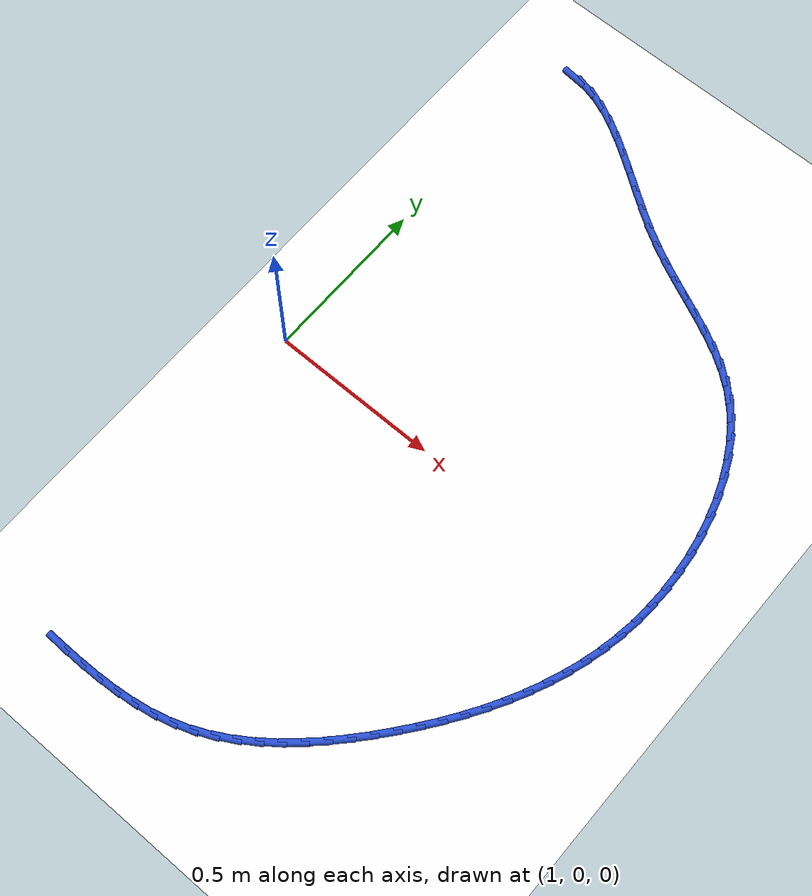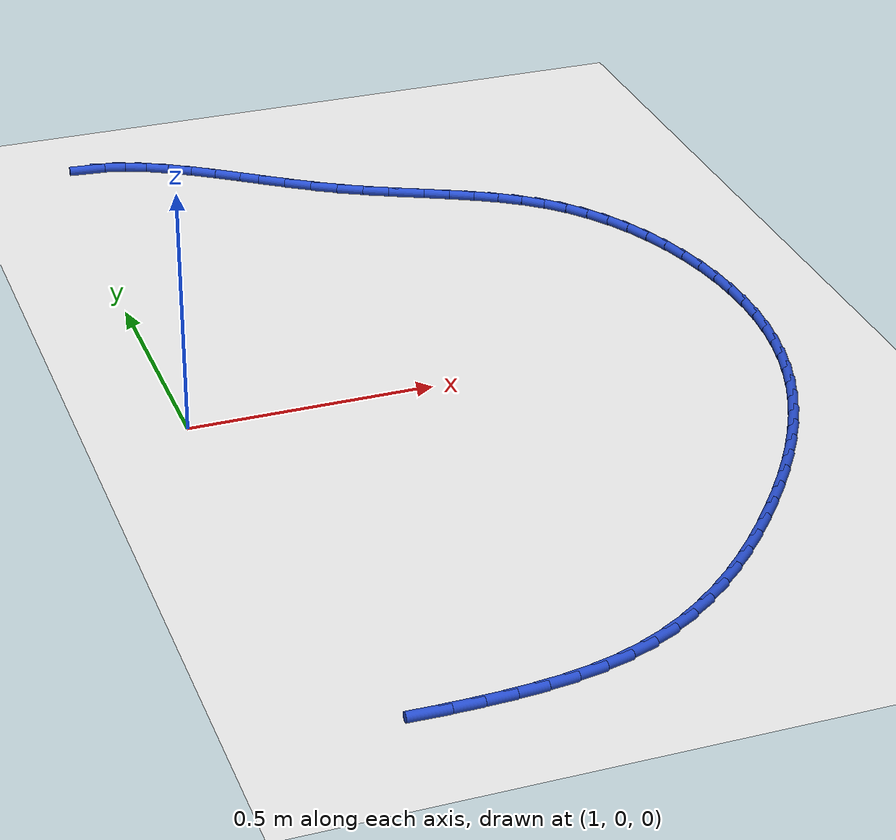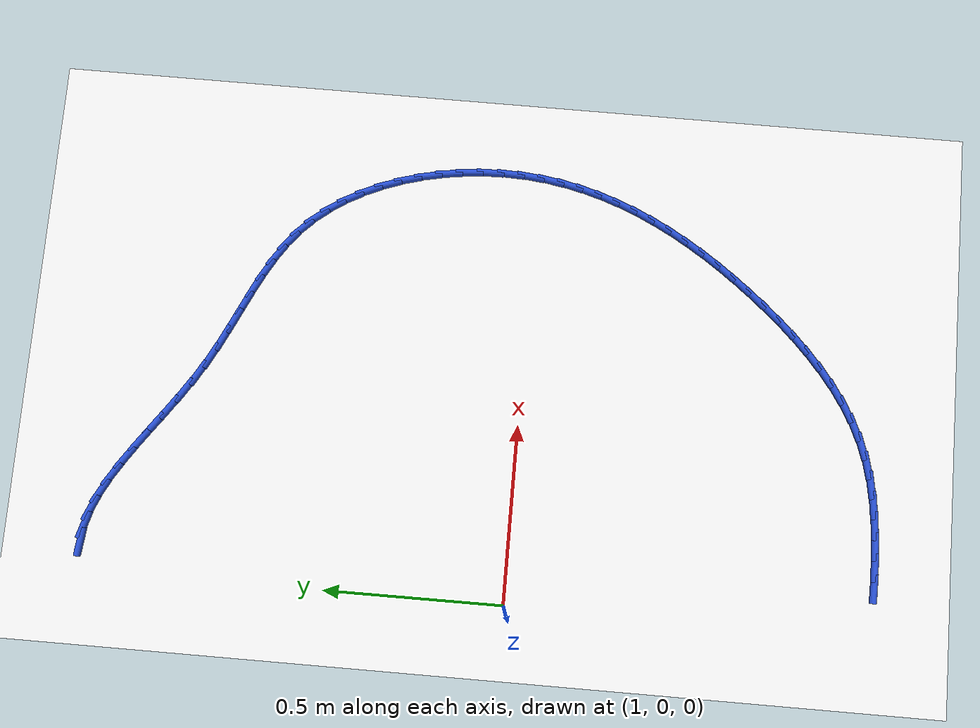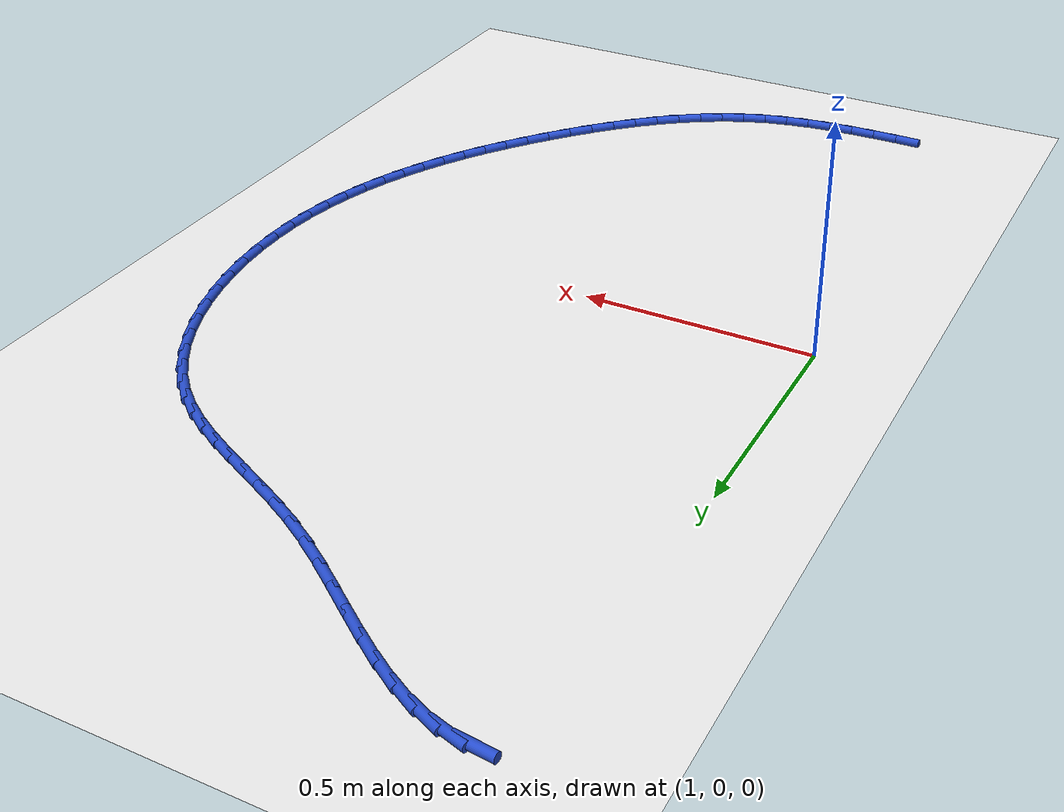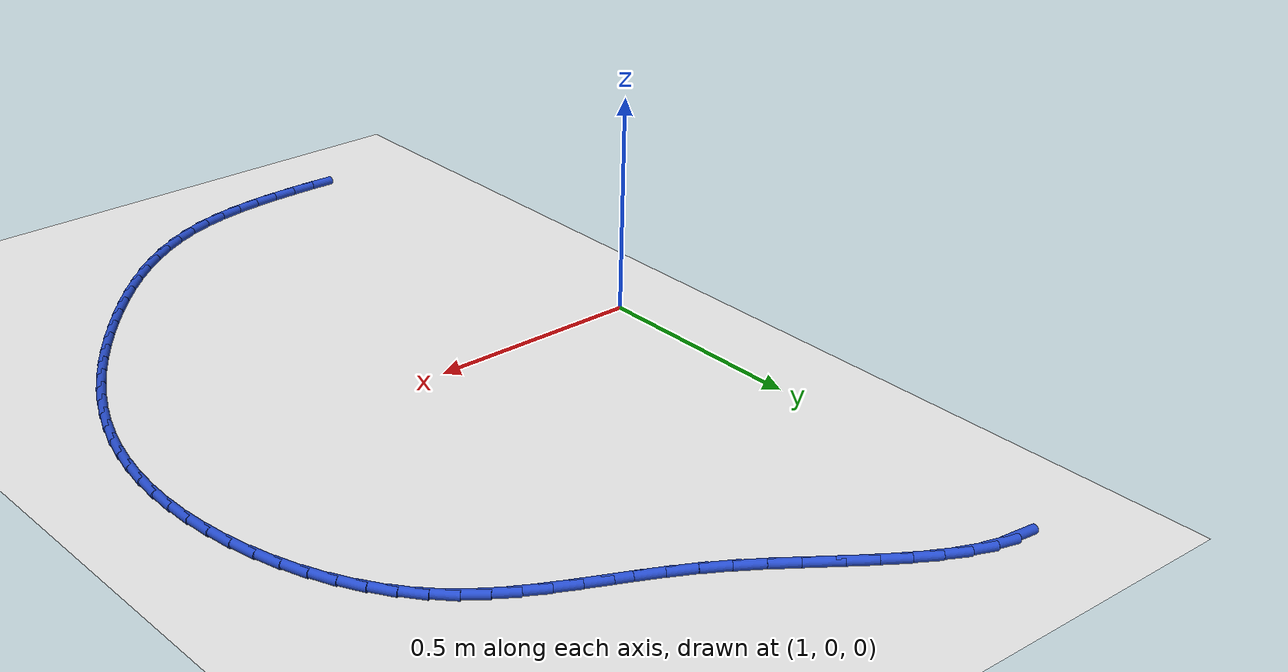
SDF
<sdf version="1.6">
 <world name="default">
  <model name="ground_plane">
   <static>1</static>
   <link name="link">
    <collision name="collision">
     <geometry><plane><normal>0 0 1</normal><size>100 100</size></plane></geometry>
     <surface><friction><ode><mu>100</mu><mu2>50</mu2></ode></friction></surface>
    </collision>
    <visual name="visual">
     <cast_shadows>0</cast_shadows>
     <geometry><plane><normal>0 0 1</normal><size>100 100</size></plane></geometry>
     <material>
      <script><uri>file://media/materials/scripts/gazebo.material</uri><name>Gazebo/WhiteGlow</name></script>
     </material>
    </visual>
   </link>
  </model>
  <model name="line">
   <link name="link_30">
    <pose>1.0761138280689855 1.180303029595587 0.01 0 1.57 -0.10283340116484498</pose>
    <collision name="collision">
     <geometry><cylinder><radius>0.01</radius><length>0.08</length></cylinder></geometry>
    </collision>
    <visual name="visual">
     <material>
      <script><name>Gazebo/Blue</name><uri>file://media/materials/scripts/gazebo.material</uri></script>
     </material>
     <geometry><cylinder><radius>0.01</radius><length>0.08</length></cylinder></geometry>
    </visual>
   </link>
   <link name="link_31">
    <pose>1.1234393863459298 1.17541915414108 0.01 0 1.57 -0.2716772466539732</pose>
    <collision name="collision">
     <geometry><cylinder><radius>0.01</radius><length>0.08</length></cylinder></geometry>
    </collision>
    <visual name="visual">
     <material>
      <script><name>Gazebo/Blue</name><uri>file://media/materials/scripts/gazebo.material</uri></script>
     </material>
     <geometry><cylinder><radius>0.01</radius><length>0.08</length></cylinder></geometry>
    </visual>
   </link>
   <link name="link_32">
    <pose>1.1712010941038342 1.162114428747828 0.01 0 1.57 -0.4005093324141519</pose>
    <collision name="collision">
     <geometry><cylinder><radius>0.01</radius><length>0.08</length></cylinder></geometry>
    </collision>
    <visual name="visual">
     <material>
      <script><name>Gazebo/Blue</name><uri>file://media/materials/scripts/gazebo.material</uri></script>
     </material>
     <geometry><cylinder><radius>0.01</radius><length>0.08</length></cylinder></geometry>
    </visual>
   </link>
   <link name="link_33">
    <pose>1.219420168189932 1.1416987753168988 0.01 0 1.57 -0.4938592876210296</pose>
    <collision name="collision">
     <geometry><cylinder><radius>0.01</radius><length>0.08</length></cylinder></geometry>
    </collision>
    <visual name="visual">
     <material>
      <script><name>Gazebo/Blue</name><uri>file://media/materials/scripts/gazebo.material</uri></script>
     </material>
     <geometry><cylinder><radius>0.01</radius><length>0.08</length></cylinder></geometry>
    </visual>
   </link>
   <link name="link_34">
    <pose>1.268117825451456 1.1154821157493593 0.01 0 1.57 -0.5580046799384387</pose>
    <collision name="collision">
     <geometry><cylinder><radius>0.01</radius><length>0.08</length></cylinder></geometry>
    </collision>
    <visual name="visual">
     <material>
      <script><name>Gazebo/Blue</name><uri>file://media/materials/scripts/gazebo.material</uri></script>
     </material>
     <geometry><cylinder><radius>0.01</radius><length>0.08</length></cylinder></geometry>
    </visual>
   </link>
   <link name="link_35">
    <pose>1.317315282735641 1.0847743719462781 0.01 0 1.57 -0.598280842321779</pose>
    <collision name="collision">
     <geometry><cylinder><radius>0.01</radius><length>0.08</length></cylinder></geometry>
    </collision>
    <visual name="visual">
     <material>
      <script><name>Gazebo/Blue</name><uri>file://media/materials/scripts/gazebo.material</uri></script>
     </material>
     <geometry><cylinder><radius>0.01</radius><length>0.08</length></cylinder></geometry>
    </visual>
   </link>
   <link name="link_36">
    <pose>1.3670337568897182 1.0508854658087223 0.01 0 1.57 -0.6183978752169873</pose>
    <collision name="collision">
     <geometry><cylinder><radius>0.01</radius><length>0.08</length></cylinder></geometry>
    </collision>
    <visual name="visual">
     <material>
      <script><name>Gazebo/Blue</name><uri>file://media/materials/scripts/gazebo.material</uri></script>
     </material>
     <geometry><cylinder><radius>0.01</radius><length>0.08</length></cylinder></geometry>
    </visual>
   </link>
   <link name="link_37">
    <pose>1.4172944647609225 1.0151253192377592 0.01 0 1.57 -0.6204904037723991</pose>
    <collision name="collision">
     <geometry><cylinder><radius>0.01</radius><length>0.08</length></cylinder></geometry>
    </collision>
    <visual name="visual">
     <material>
      <script><name>Gazebo/Blue</name><uri>file://media/materials/scripts/gazebo.material</uri></script>
     </material>
     <geometry><cylinder><radius>0.01</radius><length>0.08</length></cylinder></geometry>
    </visual>
   </link>
   <link name="link_38">
    <pose>1.468118623196487 0.9788038541344573 0.01 0 1.57 -0.6053097248054203</pose>
    <collision name="collision">
     <geometry><cylinder><radius>0.01</radius><length>0.08</length></cylinder></geometry>
    </collision>
    <visual name="visual">
     <material>
      <script><name>Gazebo/Blue</name><uri>file://media/materials/scripts/gazebo.material</uri></script>
     </material>
     <geometry><cylinder><radius>0.01</radius><length>0.08</length></cylinder></geometry>
    </visual>
   </link>
   <link name="link_39">
    <pose>1.5195274490436448 0.9432309923998837 0.01 0 1.57 -0.5723748491221786</pose>
    <collision name="collision">
     <geometry><cylinder><radius>0.01</radius><length>0.08</length></cylinder></geometry>
    </collision>
    <visual name="visual">
     <material>
      <script><name>Gazebo/Blue</name><uri>file://media/materials/scripts/gazebo.material</uri></script>
     </material>
     <geometry><cylinder><radius>0.01</radius><length>0.08</length></cylinder></geometry>
    </visual>
   </link>
   <link name="link_40">
    <pose>1.5715421591496288 0.9097166559351063 0.01 0 1.57 -0.5222815579240985</pose>
    <collision name="collision">
     <geometry><cylinder><radius>0.01</radius><length>0.08</length></cylinder></geometry>
    </collision>
    <visual name="visual">
     <material>
      <script><name>Gazebo/Blue</name><uri>file://media/materials/scripts/gazebo.material</uri></script>
     </material>
     <geometry><cylinder><radius>0.01</radius><length>0.08</length></cylinder></geometry>
    </visual>
   </link>
   <link name="link_41">
    <pose>1.6241534384037557 0.8794338502076031 0.01 0 1.57 -0.47579233122674075</pose>
    <collision name="collision">
     <geometry><cylinder><radius>0.01</radius><length>0.08</length></cylinder></geometry>
    </collision>
    <visual name="visual">
     <material>
      <script><name>Gazebo/Blue</name><uri>file://media/materials/scripts/gazebo.material</uri></script>
     </material>
     <geometry><cylinder><radius>0.01</radius><length>0.08</length></cylinder></geometry>
    </visual>
   </link>
   <link name="link_42">
    <pose>1.6770452349359104 0.8521800611958917 0.01 0 1.57 -0.44652997124669397</pose>
    <collision name="collision">
     <geometry><cylinder><radius>0.01</radius><length>0.08</length></cylinder></geometry>
    </collision>
    <visual name="visual">
     <material>
      <script><name>Gazebo/Blue</name><uri>file://media/materials/scripts/gazebo.material</uri></script>
     </material>
     <geometry><cylinder><radius>0.01</radius><length>0.08</length></cylinder></geometry>
    </visual>
   </link>
   <link name="link_43">
    <pose>1.7297243178218464 0.8269582393867196 0.01 0 1.57 -0.43573258028484774</pose>
    <collision name="collision">
     <geometry><cylinder><radius>0.01</radius><length>0.08</length></cylinder></geometry>
    </collision>
    <visual name="visual">
     <material>
      <script><name>Gazebo/Blue</name><uri>file://media/materials/scripts/gazebo.material</uri></script>
     </material>
     <geometry><cylinder><radius>0.01</radius><length>0.08</length></cylinder></geometry>
    </visual>
   </link>
   <link name="link_44">
    <pose>1.7816953083916272 0.8027617039919421 0.01 0 1.57 -0.4444661014317783</pose>
    <collision name="collision">
     <geometry><cylinder><radius>0.01</radius><length>0.08</length></cylinder></geometry>
    </collision>
    <visual name="visual">
     <material>
      <script><name>Gazebo/Blue</name><uri>file://media/materials/scripts/gazebo.material</uri></script>
     </material>
     <geometry><cylinder><radius>0.01</radius><length>0.08</length></cylinder></geometry>
    </visual>
   </link>
   <link name="link_45">
    <pose>1.8324628279753206 0.7785837742234146 0.01 0 1.57 -0.473893038524975</pose>
    <collision name="collision">
     <geometry><cylinder><radius>0.01</radius><length>0.08</length></cylinder></geometry>
    </collision>
    <visual name="visual">
     <material>
      <script><name>Gazebo/Blue</name><uri>file://media/materials/scripts/gazebo.material</uri></script>
     </material>
     <geometry><cylinder><radius>0.01</radius><length>0.08</length></cylinder></geometry>
    </visual>
   </link>
   <link name="link_46">
    <pose>1.8815314979029893 0.7534177692929922 0.01 0 1.57 -0.5251620112704335</pose>
    <collision name="collision">
     <geometry><cylinder><radius>0.01</radius><length>0.08</length></cylinder></geometry>
    </collision>
    <visual name="visual">
     <material>
      <script><name>Gazebo/Blue</name><uri>file://media/materials/scripts/gazebo.material</uri></script>
     </material>
     <geometry><cylinder><radius>0.01</radius><length>0.08</length></cylinder></geometry>
    </visual>
   </link>
   <link name="link_47">
    <pose>1.9284059395047002 0.7262570084125299 0.01 0 1.57 -0.5989775658666884</pose>
    <collision name="collision">
     <geometry><cylinder><radius>0.01</radius><length>0.08</length></cylinder></geometry>
    </collision>
    <visual name="visual">
     <material>
      <script><name>Gazebo/Blue</name><uri>file://media/materials/scripts/gazebo.material</uri></script>
     </material>
     <geometry><cylinder><radius>0.01</radius><length>0.08</length></cylinder></geometry>
    </visual>
   </link>
   <link name="link_48">
    <pose>1.9725907741105184 0.6960948107938832 0.01 0 1.57 -0.694789931543957</pose>
    <collision name="collision">
     <geometry><cylinder><radius>0.01</radius><length>0.08</length></cylinder></geometry>
    </collision>
    <visual name="visual">
     <material>
      <script><name>Gazebo/Blue</name><uri>file://media/materials/scripts/gazebo.material</uri></script>
     </material>
     <geometry><cylinder><radius>0.01</radius><length>0.08</length></cylinder></geometry>
    </visual>
   </link>
   <link name="link_49">
    <pose>2.0135906703818724 0.6619246418105853 0.01 0 1.57 -0.8042591536278633</pose>
    <collision name="collision">
     <geometry><cylinder><radius>0.01</radius><length>0.08</length></cylinder></geometry>
    </collision>
    <visual name="visual">
     <material>
      <script><name>Gazebo/Blue</name><uri>file://media/materials/scripts/gazebo.material</uri></script>
     </material>
     <geometry><cylinder><radius>0.01</radius><length>0.08</length></cylinder></geometry>
    </visual>
   </link>
   <link name="link_50">
    <pose>2.0510145116988263 0.6230617872267579 0.01 0 1.57 -0.9075346252584526</pose>
    <collision name="collision">
     <geometry><cylinder><radius>0.01</radius><length>0.08</length></cylinder></geometry>
    </collision>
    <visual name="visual">
     <material>
      <script><name>Gazebo/Blue</name><uri>file://media/materials/scripts/gazebo.material</uri></script>
     </material>
     <geometry><cylinder><radius>0.01</radius><length>0.08</length></cylinder></geometry>
    </visual>
   </link>
   <link name="link_51">
    <pose>2.0847964865762427 0.5798260917298063 0.01 0 1.57 -1.0015143556367594</pose>
    <collision name="collision">
     <geometry><cylinder><radius>0.01</radius><length>0.08</length></cylinder></geometry>
    </collision>
    <visual name="visual">
     <material>
      <script><name>Gazebo/Blue</name><uri>file://media/materials/scripts/gazebo.material</uri></script>
     </material>
     <geometry><cylinder><radius>0.01</radius><length>0.08</length></cylinder></geometry>
    </visual>
   </link>
   <link name="link_52">
    <pose>2.1149340802357357 0.5327328634805942 0.01 0 1.57 -1.0871615051269494</pose>
    <collision name="collision">
     <geometry><cylinder><radius>0.01</radius><length>0.08</length></cylinder></geometry>
    </collision>
    <visual name="visual">
     <material>
      <script><name>Gazebo/Blue</name><uri>file://media/materials/scripts/gazebo.material</uri></script>
     </material>
     <geometry><cylinder><radius>0.01</radius><length>0.08</length></cylinder></geometry>
    </visual>
   </link>
   <link name="link_53">
    <pose>2.1414247778989197 0.48229741063998754 0.01 0 1.57 -1.1656736625387067</pose>
    <collision name="collision">
     <geometry><cylinder><radius>0.01</radius><length>0.08</length></cylinder></geometry>
    </collision>
    <visual name="visual">
     <material>
      <script><name>Gazebo/Blue</name><uri>file://media/materials/scripts/gazebo.material</uri></script>
     </material>
     <geometry><cylinder><radius>0.01</radius><length>0.08</length></cylinder></geometry>
    </visual>
   </link>
   <link name="link_54">
    <pose>2.164266064787409 0.42903504136884935 0.01 0 1.57 -1.2383200657748175</pose>
    <collision name="collision">
     <geometry><cylinder><radius>0.01</radius><length>0.08</length></cylinder></geometry>
    </collision>
    <visual name="visual">
     <material>
      <script><name>Gazebo/Blue</name><uri>file://media/materials/scripts/gazebo.material</uri></script>
     </material>
     <geometry><cylinder><radius>0.01</radius><length>0.08</length></cylinder></geometry>
    </visual>
   </link>
   <link name="link_55">
    <pose>2.183455426122816 0.3734610638280452 0.01 0 1.57 -1.3063544306910106</pose>
    <collision name="collision">
     <geometry><cylinder><radius>0.01</radius><length>0.08</length></cylinder></geometry>
    </collision>
    <visual name="visual">
     <material>
      <script><name>Gazebo/Blue</name><uri>file://media/materials/scripts/gazebo.material</uri></script>
     </material>
     <geometry><cylinder><radius>0.01</radius><length>0.08</length></cylinder></geometry>
    </visual>
   </link>
   <link name="link_56">
    <pose>2.1989903471267573 0.31609078617843894 0.01 0 1.57 -1.370980329789941</pose>
    <collision name="collision">
     <geometry><cylinder><radius>0.01</radius><length>0.08</length></cylinder></geometry>
    </collision>
    <visual name="visual">
     <material>
      <script><name>Gazebo/Blue</name><uri>file://media/materials/scripts/gazebo.material</uri></script>
     </material>
     <geometry><cylinder><radius>0.01</radius><length>0.08</length></cylinder></geometry>
    </visual>
   </link>
   <link name="link_57">
    <pose>2.2108683130208453 0.25743951658089576 0.01 0 1.57 -1.433349410067765</pose>
    <collision name="collision">
     <geometry><cylinder><radius>0.01</radius><length>0.08</length></cylinder></geometry>
    </collision>
    <visual name="visual">
     <material>
      <script><name>Gazebo/Blue</name><uri>file://media/materials/scripts/gazebo.material</uri></script>
     </material>
     <geometry><cylinder><radius>0.01</radius><length>0.08</length></cylinder></geometry>
    </visual>
   </link>
   <link name="link_58">
    <pose>2.219086809026695 0.19802256319627942 0.01 0 1.57 -1.4945789906751863</pose>
    <collision name="collision">
     <geometry><cylinder><radius>0.01</radius><length>0.08</length></cylinder></geometry>
    </collision>
    <visual name="visual">
     <material>
      <script><name>Gazebo/Blue</name><uri>file://media/materials/scripts/gazebo.material</uri></script>
     </material>
     <geometry><cylinder><radius>0.01</radius><length>0.08</length></cylinder></geometry>
    </visual>
   </link>
   <link name="link_59">
    <pose>2.2236433203659196 0.13835523418545526 0.01 0 1.57 -1.555781025920331</pose>
    <collision name="collision">
     <geometry><cylinder><radius>0.01</radius><length>0.08</length></cylinder></geometry>
    </collision>
    <visual name="visual">
     <material>
      <script><name>Gazebo/Blue</name><uri>file://media/materials/scripts/gazebo.material</uri></script>
     </material>
     <geometry><cylinder><radius>0.01</radius><length>0.08</length></cylinder></geometry>
    </visual>
   </link>
   <link name="link_60">
    <pose>2.2245353322601344 0.07895283770928696 0.01 0 1.57 1.5234996087201487</pose>
    <collision name="collision">
     <geometry><cylinder><radius>0.01</radius><length>0.08</length></cylinder></geometry>
    </collision>
    <visual name="visual">
     <material>
      <script><name>Gazebo/Blue</name><uri>file://media/materials/scripts/gazebo.material</uri></script>
     </material>
     <geometry><cylinder><radius>0.01</radius><length>0.08</length></cylinder></geometry>
    </visual>
   </link>
   <link name="link_61">
    <pose>2.2217605897788677 0.020329887292110136 0.01 0 1.57 1.4600415859559286</pose>
    <collision name="collision">
     <geometry><cylinder><radius>0.01</radius><length>0.08</length></cylinder></geometry>
    </collision>
    <visual name="visual">
     <material>
      <script><name>Gazebo/Blue</name><uri>file://media/materials/scripts/gazebo.material</uri></script>
     </material>
     <geometry><cylinder><radius>0.01</radius><length>0.08</length></cylinder></geometry>
    </visual>
   </link>
   <link name="link_62">
    <pose>2.2153677332189567 -0.03715474537857221 0.01 0 1.57 1.3976667061551105</pose>
    <collision name="collision">
     <geometry><cylinder><radius>0.01</radius><length>0.08</length></cylinder></geometry>
    </collision>
    <visual name="visual">
     <material>
      <script><name>Gazebo/Blue</name><uri>file://media/materials/scripts/gazebo.material</uri></script>
     </material>
     <geometry><cylinder><radius>0.01</radius><length>0.08</length></cylinder></geometry>
    </visual>
   </link>
   <link name="link_63">
    <pose>2.2055169638976713 -0.09348335149157994 0.01 0 1.57 1.3372107320500632</pose>
    <collision name="collision">
     <geometry><cylinder><radius>0.01</radius><length>0.08</length></cylinder></geometry>
    </collision>
    <visual name="visual">
     <material>
      <script><name>Gazebo/Blue</name><uri>file://media/materials/scripts/gazebo.material</uri></script>
     </material>
     <geometry><cylinder><radius>0.01</radius><length>0.08</length></cylinder></geometry>
    </visual>
   </link>
   <link name="link_64">
    <pose>2.192383273951104 -0.14868345378948641 0.01 0 1.57 1.2791380443699727</pose>
    <collision name="collision">
     <geometry><cylinder><radius>0.01</radius><length>0.08</length></cylinder></geometry>
    </collision>
    <visual name="visual">
     <material>
      <script><name>Gazebo/Blue</name><uri>file://media/materials/scripts/gazebo.material</uri></script>
     </material>
     <geometry><cylinder><radius>0.01</radius><length>0.08</length></cylinder></geometry>
    </visual>
   </link>
   <link name="link_65">
    <pose>2.176141655515349 -0.20278257501486735 0.01 0 1.57 1.2238171149671286</pose>
    <collision name="collision">
     <geometry><cylinder><radius>0.01</radius><length>0.08</length></cylinder></geometry>
    </collision>
    <visual name="visual">
     <material>
      <script><name>Gazebo/Blue</name><uri>file://media/materials/scripts/gazebo.material</uri></script>
     </material>
     <geometry><cylinder><radius>0.01</radius><length>0.08</length></cylinder></geometry>
    </visual>
   </link>
   <link name="link_66">
    <pose>2.156967100726498 -0.25580823791029805 0.01 0 1.57 1.1715175561949671</pose>
    <collision name="collision">
     <geometry><cylinder><radius>0.01</radius><length>0.08</length></cylinder></geometry>
    </collision>
    <visual name="visual">
     <material>
      <script><name>Gazebo/Blue</name><uri>file://media/materials/scripts/gazebo.material</uri></script>
     </material>
     <geometry><cylinder><radius>0.01</radius><length>0.08</length></cylinder></geometry>
    </visual>
   </link>
   <link name="link_67">
    <pose>2.1350346017206463 -0.3077879652183523 0.01 0 1.57 1.1224151811629193</pose>
    <collision name="collision">
     <geometry><cylinder><radius>0.01</radius><length>0.08</length></cylinder></geometry>
    </collision>
    <visual name="visual">
     <material>
      <script><name>Gazebo/Blue</name><uri>file://media/materials/scripts/gazebo.material</uri></script>
     </material>
     <geometry><cylinder><radius>0.01</radius><length>0.08</length></cylinder></geometry>
    </visual>
   </link>
   <link name="link_68">
    <pose>2.1105191506338845 -0.3587492796816052 0.01 0 1.57 1.0766027468313932</pose>
    <collision name="collision">
     <geometry><cylinder><radius>0.01</radius><length>0.08</length></cylinder></geometry>
    </collision>
    <visual name="visual">
     <material>
      <script><name>Gazebo/Blue</name><uri>file://media/materials/scripts/gazebo.material</uri></script>
     </material>
     <geometry><cylinder><radius>0.01</radius><length>0.08</length></cylinder></geometry>
    </visual>
   </link>
   <link name="link_69">
    <pose>2.0835957396023077 -0.408719704042632 0.01 0 1.57 1.0341039079826806</pose>
    <collision name="collision">
     <geometry><cylinder><radius>0.01</radius><length>0.08</length></cylinder></geometry>
    </collision>
    <visual name="visual">
     <material>
      <script><name>Gazebo/Blue</name><uri>file://media/materials/scripts/gazebo.material</uri></script>
     </material>
     <geometry><cylinder><radius>0.01</radius><length>0.08</length></cylinder></geometry>
    </visual>
   </link>
   <link name="link_70">
    <pose>2.0544393607620077 -0.45772676104400795 0.01 0 1.57 0.9948882402144543</pose>
    <collision name="collision">
     <geometry><cylinder><radius>0.01</radius><length>0.08</length></cylinder></geometry>
    </collision>
    <visual name="visual">
     <material>
      <script><name>Gazebo/Blue</name><uri>file://media/materials/scripts/gazebo.material</uri></script>
     </material>
     <geometry><cylinder><radius>0.01</radius><length>0.08</length></cylinder></geometry>
    </visual>
   </link>
   <link name="link_71">
    <pose>2.023225006249079 -0.5057979734283069 0.01 0 1.57 0.9588857550280101</pose>
    <collision name="collision">
     <geometry><cylinder><radius>0.01</radius><length>0.08</length></cylinder></geometry>
    </collision>
    <visual name="visual">
     <material>
      <script><name>Gazebo/Blue</name><uri>file://media/materials/scripts/gazebo.material</uri></script>
     </material>
     <geometry><cylinder><radius>0.01</radius><length>0.08</length></cylinder></geometry>
    </visual>
   </link>
   <link name="link_72">
    <pose>1.9901276681996145 -0.552960863938104 0.01 0 1.57 0.9259999295552127</pose>
    <collision name="collision">
     <geometry><cylinder><radius>0.01</radius><length>0.08</length></cylinder></geometry>
    </collision>
    <visual name="visual">
     <material>
      <script><name>Gazebo/Blue</name><uri>file://media/materials/scripts/gazebo.material</uri></script>
     </material>
     <geometry><cylinder><radius>0.01</radius><length>0.08</length></cylinder></geometry>
    </visual>
   </link>
   <link name="link_73">
    <pose>1.9553223387497063 -0.599242955315974 0.01 0 1.57 0.8961158476229802</pose>
    <collision name="collision">
     <geometry><cylinder><radius>0.01</radius><length>0.08</length></cylinder></geometry>
    </collision>
    <visual name="visual">
     <material>
      <script><name>Gazebo/Blue</name><uri>file://media/materials/scripts/gazebo.material</uri></script>
     </material>
     <geometry><cylinder><radius>0.01</radius><length>0.08</length></cylinder></geometry>
    </visual>
   </link>
   <link name="link_74">
    <pose>1.9189839271646503 -0.6446716003716967 0.01 0 1.57 0.8672167908676095</pose>
    <collision name="collision">
     <geometry><cylinder><radius>0.01</radius><length>0.08</length></cylinder></geometry>
    </collision>
    <visual name="visual">
     <material>
      <script><name>Gazebo/Blue</name><uri>file://media/materials/scripts/gazebo.material</uri></script>
     </material>
     <geometry><cylinder><radius>0.01</radius><length>0.08</length></cylinder></geometry>
    </visual>
   </link>
   <link name="link_75">
    <pose>1.881234280555975 -0.6891653439824809 0.01 0 1.57 0.8339093794432578</pose>
    <collision name="collision">
     <geometry><cylinder><radius>0.01</radius><length>0.08</length></cylinder></geometry>
    </collision>
    <visual name="visual">
     <material>
      <script><name>Gazebo/Blue</name><uri>file://media/materials/scripts/gazebo.material</uri></script>
     </material>
     <geometry><cylinder><radius>0.01</radius><length>0.08</length></cylinder></geometry>
    </visual>
   </link>
   <link name="link_76">
    <pose>1.8420511462368307 -0.7323472435635456 0.01 0 1.57 0.7949017394627724</pose>
    <collision name="collision">
     <geometry><cylinder><radius>0.01</radius><length>0.08</length></cylinder></geometry>
    </collision>
    <visual name="visual">
     <material>
      <script><name>Gazebo/Blue</name><uri>file://media/materials/scripts/gazebo.material</uri></script>
     </material>
     <geometry><cylinder><radius>0.01</radius><length>0.08</length></cylinder></geometry>
    </visual>
   </link>
   <link name="link_77">
    <pose>1.801388043609621 -0.7737906753790126 0.01 0 1.57 0.7496789009649478</pose>
    <collision name="collision">
     <geometry><cylinder><radius>0.01</radius><length>0.08</length></cylinder></geometry>
    </collision>
    <visual name="visual">
     <material>
      <script><name>Gazebo/Blue</name><uri>file://media/materials/scripts/gazebo.material</uri></script>
     </material>
     <geometry><cylinder><radius>0.01</radius><length>0.08</length></cylinder></geometry>
    </visual>
   </link>
   <link name="link_78">
    <pose>1.7591984920767503 -0.8130690156930045 0.01 0 1.57 0.6976694825897676</pose>
    <collision name="collision">
     <geometry><cylinder><radius>0.01</radius><length>0.08</length></cylinder></geometry>
    </collision>
    <visual name="visual">
     <material>
      <script><name>Gazebo/Blue</name><uri>file://media/materials/scripts/gazebo.material</uri></script>
     </material>
     <geometry><cylinder><radius>0.01</radius><length>0.08</length></cylinder></geometry>
    </visual>
   </link>
   <link name="link_79">
    <pose>1.7154360110406228 -0.8497556407696417 0.01 0 1.57 0.6382892621334868</pose>
    <collision name="collision">
     <geometry><cylinder><radius>0.01</radius><length>0.08</length></cylinder></geometry>
    </collision>
    <visual name="visual">
     <material>
      <script><name>Gazebo/Blue</name><uri>file://media/materials/scripts/gazebo.material</uri></script>
     </material>
     <geometry><cylinder><radius>0.01</radius><length>0.08</length></cylinder></geometry>
    </visual>
   </link>
   <link name="link_80">
    <pose>1.6700541199036427 -0.8834239268730468 0.01 0 1.57 0.571011364132242</pose>
    <collision name="collision">
     <geometry><cylinder><radius>0.01</radius><length>0.08</length></cylinder></geometry>
    </collision>
    <visual name="visual">
     <material>
      <script><name>Gazebo/Blue</name><uri>file://media/materials/scripts/gazebo.material</uri></script>
     </material>
     <geometry><cylinder><radius>0.01</radius><length>0.08</length></cylinder></geometry>
    </visual>
   </link>
   <link name="link_81">
    <pose>1.6230063380682134 -0.9136472502673423 0.01 0 1.57 0.4954706857063809</pose>
    <collision name="collision">
     <geometry><cylinder><radius>0.01</radius><length>0.08</length></cylinder></geometry>
    </collision>
    <visual name="visual">
     <material>
      <script><name>Gazebo/Blue</name><uri>file://media/materials/scripts/gazebo.material</uri></script>
     </material>
     <geometry><cylinder><radius>0.01</radius><length>0.08</length></cylinder></geometry>
    </visual>
   </link>
   <link name="link_82">
    <pose>1.5742461849367393 -0.9399989872166489 0.01 0 1.57 0.4116037273139908</pose>
    <collision name="collision">
     <geometry><cylinder><radius>0.01</radius><length>0.08</length></cylinder></geometry>
    </collision>
    <visual name="visual">
     <material>
      <script><name>Gazebo/Blue</name><uri>file://media/materials/scripts/gazebo.material</uri></script>
     </material>
     <geometry><cylinder><radius>0.01</radius><length>0.08</length></cylinder></geometry>
    </visual>
   </link>
   <link name="link_83">
    <pose>1.5237271799116245 -0.9620525139850891 0.01 0 1.57 0.3207290861637782</pose>
    <collision name="collision">
     <geometry><cylinder><radius>0.01</radius><length>0.08</length></cylinder></geometry>
    </collision>
    <visual name="visual">
     <material>
      <script><name>Gazebo/Blue</name><uri>file://media/materials/scripts/gazebo.material</uri></script>
     </material>
     <geometry><cylinder><radius>0.01</radius><length>0.08</length></cylinder></geometry>
    </visual>
   </link>
   <link name="link_84">
    <pose>1.4714186274491368 -0.9794293499653157 0.01 0 1.57 0.23495023563878764</pose>
    <collision name="collision">
     <geometry><cylinder><radius>0.01</radius><length>0.08</length></cylinder></geometry>
    </collision>
    <visual name="visual">
     <material>
      <script><name>Gazebo/Blue</name><uri>file://media/materials/scripts/gazebo.material</uri></script>
     </material>
     <geometry><cylinder><radius>0.01</radius><length>0.08</length></cylinder></geometry>
    </visual>
   </link>
   <link name="link_85">
    <pose>1.417482944837049 -0.9923399929562933 0.01 0 1.57 0.16228647458102463</pose>
    <collision name="collision">
     <geometry><cylinder><radius>0.01</radius><length>0.08</length></cylinder></geometry>
    </collision>
    <visual name="visual">
     <material>
      <script><name>Gazebo/Blue</name><uri>file://media/materials/scripts/gazebo.material</uri></script>
     </material>
     <geometry><cylinder><radius>0.01</radius><length>0.08</length></cylinder></geometry>
    </visual>
   </link>
   <link name="link_86">
    <pose>1.3622118595100032 -1.0013893261721156 0.01 0 1.57 0.10263775277491634</pose>
    <collision name="collision">
     <geometry><cylinder><radius>0.01</radius><length>0.08</length></cylinder></geometry>
    </collision>
    <visual name="visual">
     <material>
      <script><name>Gazebo/Blue</name><uri>file://media/materials/scripts/gazebo.material</uri></script>
     </material>
     <geometry><cylinder><radius>0.01</radius><length>0.08</length></cylinder></geometry>
    </visual>
   </link>
   <link name="link_87">
    <pose>1.305899476468849 -1.0071894842101592 0.01 0 1.57 0.05537866709364074</pose>
    <collision name="collision">
     <geometry><cylinder><radius>0.01</radius><length>0.08</length></cylinder></geometry>
    </collision>
    <visual name="visual">
     <material>
      <script><name>Gazebo/Blue</name><uri>file://media/materials/scripts/gazebo.material</uri></script>
     </material>
     <geometry><cylinder><radius>0.01</radius><length>0.08</length></cylinder></geometry>
    </visual>
   </link>
   <link name="link_88">
    <pose>1.2488399007144377 -1.010352601667802 0.01 0 1.57 0.0197880404122283</pose>
    <collision name="collision">
     <geometry><cylinder><radius>0.01</radius><length>0.08</length></cylinder></geometry>
    </collision>
    <visual name="visual">
     <material>
      <script><name>Gazebo/Blue</name><uri>file://media/materials/scripts/gazebo.material</uri></script>
     </material>
     <geometry><cylinder><radius>0.01</radius><length>0.08</length></cylinder></geometry>
    </visual>
   </link>
   <link name="link_89">
    <pose>1.1913272372476198 -1.0114908131424207 0.01 0 1.57 -0.005700582525180118</pose>
    <collision name="collision">
     <geometry><cylinder><radius>0.01</radius><length>0.08</length></cylinder></geometry>
    </collision>
    <visual name="visual">
     <material>
      <script><name>Gazebo/Blue</name><uri>file://media/materials/scripts/gazebo.material</uri></script>
     </material>
     <geometry><cylinder><radius>0.01</radius><length>0.08</length></cylinder></geometry>
    </visual>
   </link>
   <link name="link_90">
    <pose>1.1336439922202235 -1.0111619814818393 0.01 0 1.57 -0.029647380284377644</pose>
    <collision name="collision">
     <geometry><cylinder><radius>0.01</radius><length>0.08</length></cylinder></geometry>
    </collision>
    <visual name="visual">
     <material>
      <script><name>Gazebo/Blue</name><uri>file://media/materials/scripts/gazebo.material</uri></script>
     </material>
     <geometry><cylinder><radius>0.01</radius><length>0.08</length></cylinder></geometry>
    </visual>
   </link>
  </model>
 </world>
</sdf>
